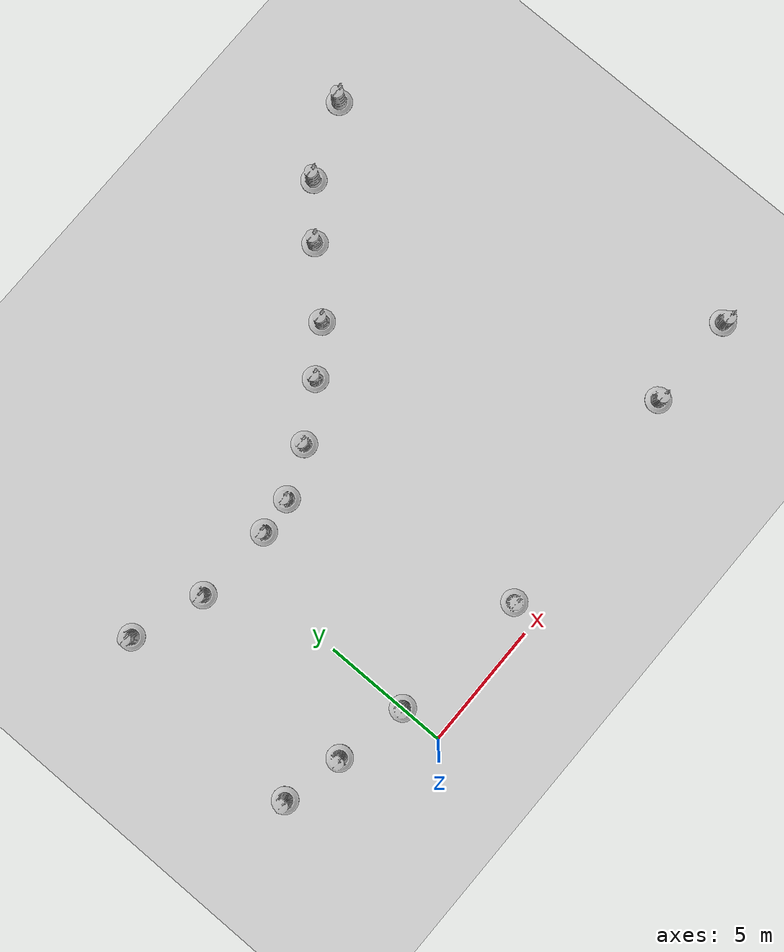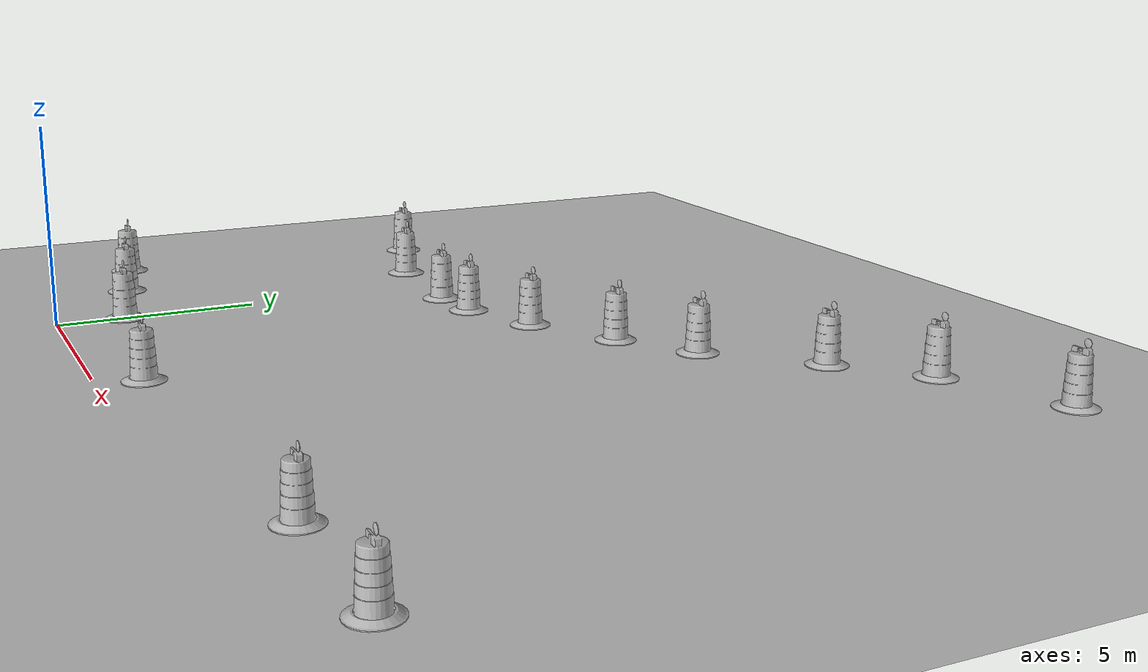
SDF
<sdf version="1.6">
 <world name="default">
  <model name="ground_plane">
   <static>1</static>
   <link name="link">
    <collision name="collision">
     <geometry><plane><normal>0 0 1</normal><size>100 100</size></plane></geometry>
     <surface>
      <contact><collide_bitmask>65535</collide_bitmask></contact>
      <friction><ode><mu>100</mu><mu2>50</mu2></ode></friction>
     </surface>
    </collision>
    <visual name="visual">
     <cast_shadows>0</cast_shadows>
     <geometry><plane><normal>0 0 1</normal><size>100 100</size></plane></geometry>
     <material>
      <script><uri>file://media/materials/scripts/gazebo.material</uri><name>Gazebo/Grey</name></script>
     </material>
    </visual>
   </link>
  </model>
  <model name="Construction Barrel_0_clone_55">
   <link name="link">
    <inertial>
     <pose>0 0 0.4 0 -0 0</pose>
     <mass>500</mass>
     <inertia><ixx>51.2096</ixx><iyy>51.2096</iyy><izz>25</izz><ixy>0</ixy><ixz>0</ixz><iyz>0</iyz></inertia>
    </inertial>
    <collision name="collision">
     <geometry><mesh><uri>model://construction_barrel/meshes/construction_barrel.dae</uri></mesh></geometry>
    </collision>
    <visual name="visual">
     <geometry><mesh><uri>model://construction_barrel/meshes/construction_barrel.dae</uri></mesh></geometry>
    </visual>
   </link>
   <pose>18.666 1.73983 -2e-06 6e-06 -4e-06 -4.3e-05</pose>
  </model>
  <model name="Construction Barrel_0_clone_60">
   <link name="link">
    <inertial>
     <pose>0 0 0.4 0 -0 0</pose>
     <mass>500</mass>
     <inertia><ixx>51.2096</ixx><iyy>51.2096</iyy><izz>25</izz><ixy>0</ixy><ixz>0</ixz><iyz>0</iyz></inertia>
    </inertial>
    <collision name="collision">
     <geometry><mesh><uri>model://construction_barrel/meshes/construction_barrel.dae</uri></mesh></geometry>
    </collision>
    <visual name="visual">
     <geometry><mesh><uri>model://construction_barrel/meshes/construction_barrel.dae</uri></mesh></geometry>
    </visual>
   </link>
   <pose>0.028292 1.70047 -2e-06 6e-06 -4e-06 -1.5e-05</pose>
  </model>
  <model name="Construction Barrel_0_clone_61">
   <link name="link">
    <inertial>
     <pose>0 0 0.4 0 -0 0</pose>
     <mass>500</mass>
     <inertia><ixx>51.2096</ixx><iyy>51.2096</iyy><izz>25</izz><ixy>0</ixy><ixz>0</ixz><iyz>0</iyz></inertia>
    </inertial>
    <collision name="collision">
     <geometry><mesh><uri>model://construction_barrel/meshes/construction_barrel.dae</uri></mesh></geometry>
    </collision>
    <visual name="visual">
     <geometry><mesh><uri>model://construction_barrel/meshes/construction_barrel.dae</uri></mesh></geometry>
    </visual>
   </link>
   <pose>-5.25112 2.83194 -2e-06 6e-06 -4e-06 -4.3e-05</pose>
  </model>
  <model name="Construction Barrel_0_clone_65">
   <link name="link">
    <inertial>
     <pose>0 0 0.4 0 -0 0</pose>
     <mass>500</mass>
     <inertia><ixx>51.2096</ixx><iyy>51.2096</iyy><izz>25</izz><ixy>0</ixy><ixz>0</ixz><iyz>0</iyz></inertia>
    </inertial>
    <collision name="collision">
     <geometry><mesh><uri>model://construction_barrel/meshes/construction_barrel.dae</uri></mesh></geometry>
    </collision>
    <visual name="visual">
     <geometry><mesh><uri>model://construction_barrel/meshes/construction_barrel.dae</uri></mesh></geometry>
    </visual>
   </link>
   <pose>3.09008 9.93068 -2e-06 6e-06 -4e-06 -1.5e-05</pose>
  </model>
  <model name="Construction Barrel_0_clone_66">
   <link name="link">
    <inertial>
     <pose>0 0 0.4 0 -0 0</pose>
     <mass>500</mass>
     <inertia><ixx>51.2096</ixx><iyy>51.2096</iyy><izz>25</izz><ixy>0</ixy><ixz>0</ixz><iyz>0</iyz></inertia>
    </inertial>
    <collision name="collision">
     <geometry><mesh><uri>model://construction_barrel/meshes/construction_barrel.dae</uri></mesh></geometry>
    </collision>
    <visual name="visual">
     <geometry><mesh><uri>model://construction_barrel/meshes/construction_barrel.dae</uri></mesh></geometry>
    </visual>
   </link>
   <pose>-1.57559 9.97337 -2e-06 6e-06 -4e-06 -1.5e-05</pose>
  </model>
  <model name="Construction Barrel_0_clone_67">
   <link name="link">
    <inertial>
     <pose>0 0 0.4 0 -0 0</pose>
     <mass>500</mass>
     <inertia><ixx>51.2096</ixx><iyy>51.2096</iyy><izz>25</izz><ixy>0</ixy><ixz>0</ixz><iyz>0</iyz></inertia>
    </inertial>
    <collision name="collision">
     <geometry><mesh><uri>model://construction_barrel/meshes/construction_barrel.dae</uri></mesh></geometry>
    </collision>
    <visual name="visual">
     <geometry><mesh><uri>model://construction_barrel/meshes/construction_barrel.dae</uri></mesh></geometry>
    </visual>
   </link>
   <pose>-4.42769 10.9756 -2e-06 6e-06 -4e-06 -1.5e-05</pose>
  </model>
  <model name="Construction Barrel_0_clone_39_clone_8_clone_1">
   <link name="link">
    <inertial>
     <pose>0 0 0.4 0 -0 0</pose>
     <mass>500</mass>
     <inertia><ixx>51.2096</ixx><iyy>51.2096</iyy><izz>25</izz><ixy>0</ixy><ixz>0</ixz><iyz>0</iyz></inertia>
    </inertial>
    <collision name="collision">
     <geometry><mesh><uri>model://construction_barrel/meshes/construction_barrel.dae</uri></mesh></geometry>
    </collision>
    <visual name="visual">
     <geometry><mesh><uri>model://construction_barrel/meshes/construction_barrel.dae</uri></mesh></geometry>
    </visual>
   </link>
   <pose>15.8511 18.2769 -2e-06 6e-06 -4e-06 -2.2e-05</pose>
  </model>
  <model name="Construction Barrel_0_clone_39_clone_8_clone_2">
   <link name="link">
    <inertial>
     <pose>0 0 0.4 0 -0 0</pose>
     <mass>500</mass>
     <inertia><ixx>51.2096</ixx><iyy>51.2096</iyy><izz>25</izz><ixy>0</ixy><ixz>0</ixz><iyz>0</iyz></inertia>
    </inertial>
    <collision name="collision">
     <geometry><mesh><uri>model://construction_barrel/meshes/construction_barrel.dae</uri></mesh></geometry>
    </collision>
    <visual name="visual">
     <geometry><mesh><uri>model://construction_barrel/meshes/construction_barrel.dae</uri></mesh></geometry>
    </visual>
   </link>
   <pose>12.913 17.042 -2e-06 6e-06 -4e-06 -2.2e-05</pose>
  </model>
  <model name="Construction Barrel_0_clone_39_clone_8_clone_3">
   <link name="link">
    <inertial>
     <pose>0 0 0.4 0 -0 0</pose>
     <mass>500</mass>
     <inertia><ixx>51.2096</ixx><iyy>51.2096</iyy><izz>25</izz><ixy>0</ixy><ixz>0</ixz><iyz>0</iyz></inertia>
    </inertial>
    <collision name="collision">
     <geometry><mesh><uri>model://construction_barrel/meshes/construction_barrel.dae</uri></mesh></geometry>
    </collision>
    <visual name="visual">
     <geometry><mesh><uri>model://construction_barrel/meshes/construction_barrel.dae</uri></mesh></geometry>
    </visual>
   </link>
   <pose>11.0909 15.4185 -2e-06 6e-06 -4e-06 -2.2e-05</pose>
  </model>
  <model name="Construction Barrel_0_clone_39_clone_8_clone_4">
   <link name="link">
    <inertial>
     <pose>0 0 0.4 0 -0 0</pose>
     <mass>500</mass>
     <inertia><ixx>51.2096</ixx><iyy>51.2096</iyy><izz>25</izz><ixy>0</ixy><ixz>0</ixz><iyz>0</iyz></inertia>
    </inertial>
    <collision name="collision">
     <geometry><mesh><uri>model://construction_barrel/meshes/construction_barrel.dae</uri></mesh></geometry>
    </collision>
    <visual name="visual">
     <geometry><mesh><uri>model://construction_barrel/meshes/construction_barrel.dae</uri></mesh></geometry>
    </visual>
   </link>
   <pose>8.98222 13.263 -2e-06 6e-06 -4e-06 -9e-06</pose>
  </model>
  <model name="Construction Barrel_0_clone_39_clone_8_clone_5">
   <link name="link">
    <inertial>
     <pose>0 0 0.4 0 -0 0</pose>
     <mass>500</mass>
     <inertia><ixx>51.2096</ixx><iyy>51.2096</iyy><izz>25</izz><ixy>0</ixy><ixz>0</ixz><iyz>0</iyz></inertia>
    </inertial>
    <collision name="collision">
     <geometry><mesh><uri>model://construction_barrel/meshes/construction_barrel.dae</uri></mesh></geometry>
    </collision>
    <visual name="visual">
     <geometry><mesh><uri>model://construction_barrel/meshes/construction_barrel.dae</uri></mesh></geometry>
    </visual>
   </link>
   <pose>7.18675 12.0424 -2e-06 6e-06 -4e-06 -9e-06</pose>
  </model>
  <model name="Construction Barrel_0_clone_39_clone_8_clone_6">
   <link name="link">
    <inertial>
     <pose>0 0 0.4 0 -0 0</pose>
     <mass>500</mass>
     <inertia><ixx>51.2096</ixx><iyy>51.2096</iyy><izz>25</izz><ixy>0</ixy><ixz>0</ixz><iyz>0</iyz></inertia>
    </inertial>
    <collision name="collision">
     <geometry><mesh><uri>model://construction_barrel/meshes/construction_barrel.dae</uri></mesh></geometry>
    </collision>
    <visual name="visual">
     <geometry><mesh><uri>model://construction_barrel/meshes/construction_barrel.dae</uri></mesh></geometry>
    </visual>
   </link>
   <pose>5.05317 10.7687 -2e-06 6e-06 -4e-06 -9e-06</pose>
  </model>
  <model name="Construction Barrel_0_clone_39_clone_8_clone_7">
   <link name="link">
    <inertial>
     <pose>0 0 0.4 0 -0 0</pose>
     <mass>500</mass>
     <inertia><ixx>51.2096</ixx><iyy>51.2096</iyy><izz>25</izz><ixy>0</ixy><ixz>0</ixz><iyz>0</iyz></inertia>
    </inertial>
    <collision name="collision">
     <geometry><mesh><uri>model://construction_barrel/meshes/construction_barrel.dae</uri></mesh></geometry>
    </collision>
    <visual name="visual">
     <geometry><mesh><uri>model://construction_barrel/meshes/construction_barrel.dae</uri></mesh></geometry>
    </visual>
   </link>
   <pose>14.8434 1.74507 -2e-06 6e-06 -4e-06 -9e-06</pose>
  </model>
  <model name="Construction Barrel_0_clone_39_clone_8_clone_9">
   <link name="link">
    <inertial>
     <pose>0 0 0.4 0 -0 0</pose>
     <mass>500</mass>
     <inertia><ixx>51.2096</ixx><iyy>51.2096</iyy><izz>25</izz><ixy>0</ixy><ixz>0</ixz><iyz>0</iyz></inertia>
    </inertial>
    <collision name="collision">
     <geometry><mesh><uri>model://construction_barrel/meshes/construction_barrel.dae</uri></mesh></geometry>
    </collision>
    <visual name="visual">
     <geometry><mesh><uri>model://construction_barrel/meshes/construction_barrel.dae</uri></mesh></geometry>
    </visual>
   </link>
   <pose>5.6053 1.04296 -2e-06 6e-06 -4e-06 -9e-06</pose>
  </model>
  <model name="Construction Barrel_0_clone_39_clone_8_clone_11">
   <link name="link">
    <inertial>
     <pose>0 0 0.4 0 -0 0</pose>
     <mass>500</mass>
     <inertia><ixx>51.2096</ixx><iyy>51.2096</iyy><izz>25</izz><ixy>0</ixy><ixz>0</ixz><iyz>0</iyz></inertia>
    </inertial>
    <collision name="collision">
     <geometry><mesh><uri>model://construction_barrel/meshes/construction_barrel.dae</uri></mesh></geometry>
    </collision>
    <visual name="visual">
     <geometry><mesh><uri>model://construction_barrel/meshes/construction_barrel.dae</uri></mesh></geometry>
    </visual>
   </link>
   <pose>-2.82682 2.29796 -2e-06 6e-06 -4e-06 -2.2e-05</pose>
  </model>
  <model name="Construction Barrel_0_clone_39_clone_8_clone_13">
   <link name="link">
    <inertial>
     <pose>0 0 0.4 0 -0 0</pose>
     <mass>500</mass>
     <inertia><ixx>51.2096</ixx><iyy>51.2096</iyy><izz>25</izz><ixy>0</ixy><ixz>0</ixz><iyz>0</iyz></inertia>
    </inertial>
    <collision name="collision">
     <geometry><mesh><uri>model://construction_barrel/meshes/construction_barrel.dae</uri></mesh></geometry>
    </collision>
    <visual name="visual">
     <geometry><mesh><uri>model://construction_barrel/meshes/construction_barrel.dae</uri></mesh></geometry>
    </visual>
   </link>
   <pose>1.61142 9.7736 -2e-06 6e-06 -4e-06 -9e-06</pose>
  </model>
 </world>
</sdf>
